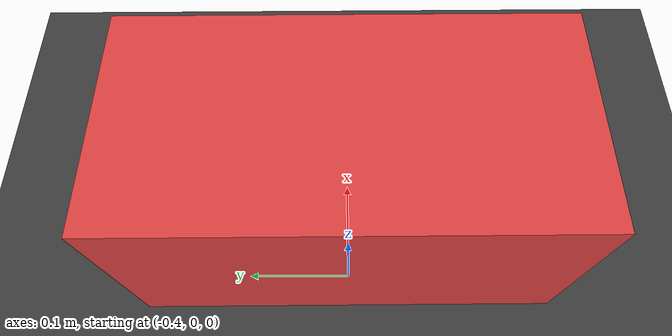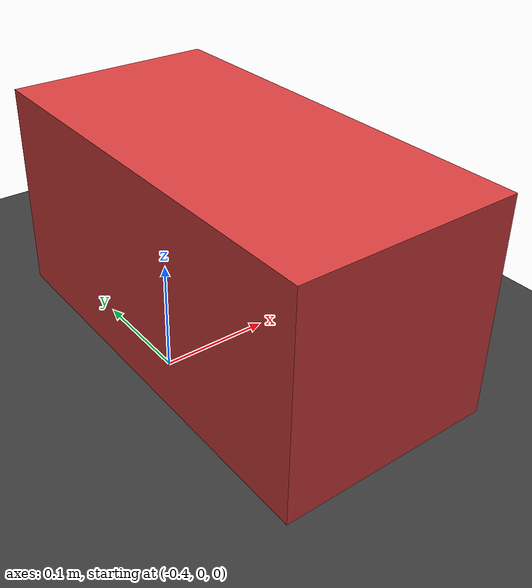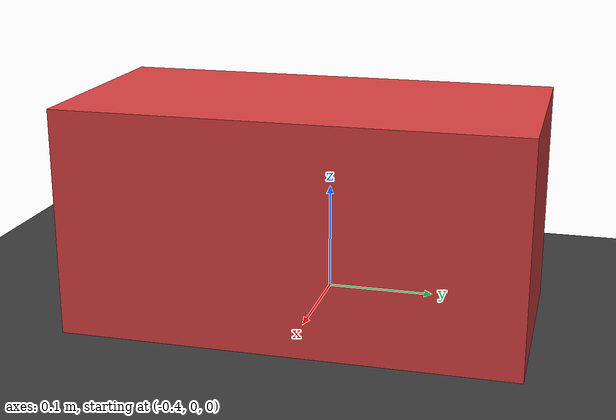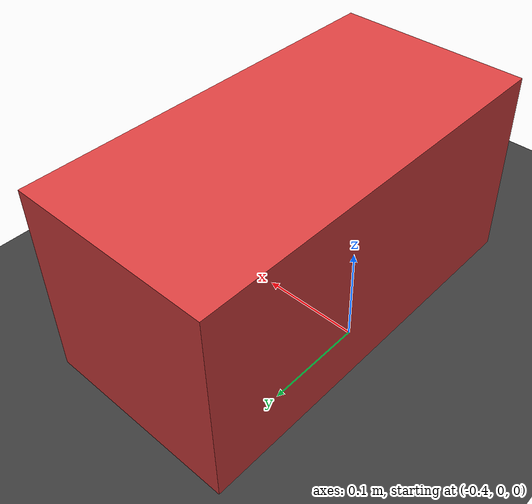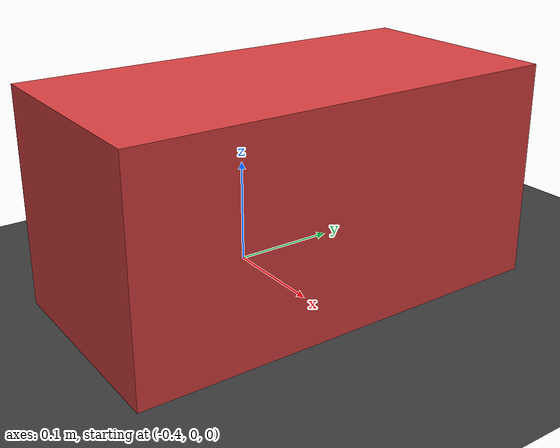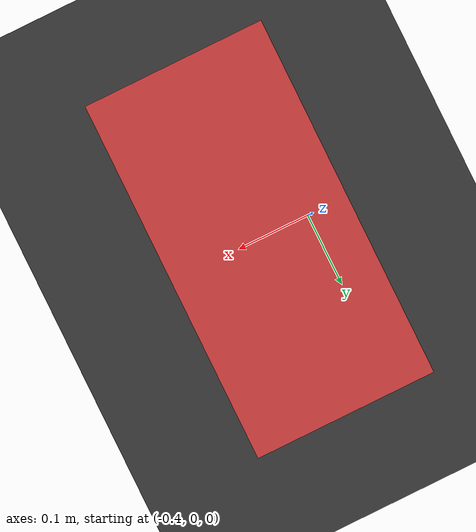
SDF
<?xml version="1.0" ?>
<sdf version="1.6">
  <world name="vacio">
    <plugin
      filename="ignition-gazebo-physics-system"
      name="ignition::gazebo::systems::Physics">
    </plugin>
    <plugin
      filename="ignition-gazebo-user-commands-system"
      name="ignition::gazebo::systems::UserCommands">
    </plugin>
    <plugin
      filename="ignition-gazebo-scene-broadcaster-system"
      name="ignition::gazebo::systems::SceneBroadcaster">
    </plugin>
    <plugin
      filename="ignition-gazebo-sensors-system"
      name="ignition::gazebo::systems::Sensors">
      <render_engine>ogre2</render_engine>
    </plugin>
    <plugin
      filename="ignition-gazebo-imu-system"
      name="ignition::gazebo::systems::Imu">
    </plugin>
    <plugin
      filename="ignition-gazebo-navsat-system"
      name="ignition::gazebo::systems::NavSat">
    </plugin>

    <spherical_coordinates>
      <surface_model>EARTH_WGS84</surface_model>
      <latitude_deg>-31.486241</latitude_deg>
      <longitude_deg>-64.240628</longitude_deg>
      <elevation>0.0</elevation>
    </spherical_coordinates>

    <light name="sun" type="directional">
      <cast_shadows>0</cast_shadows>
      <pose>0 0 10 0 0 0</pose>
      <diffuse>0.8 0.8 0.8 1</diffuse>
      <specular>0.8 0.8 0.8 1</specular>
      <attenuation>
        <range>1000</range>
        <constant>0.9</constant>
        <linear>0.01</linear>
        <quadratic>0.001</quadratic>
      </attenuation>
      <direction>-0.5 0.1 -0.9</direction>
    </light>

    <model name="ground_plane">
      <static>1</static>
      <link name="link">
        <collision name="collision">
          <pose>0 0 -0.05 0 0 0</pose>
          <geometry>
            <box>
              <size>2000 2000 0.1</size>
            </box>
          </geometry>
          <max_contacts>10</max_contacts>
          <surface>
            <friction>
              <ode>
                <mu>2.5</mu>
                <mu2>2.5</mu2>
                <slip1>0.0</slip1>
                <slip2>0.0</slip2>
              </ode>
            </friction>
          </surface>
        </collision>
        <visual name="visual">
          <geometry>
            <plane>
              <normal>0 0 1</normal>
              <size>2000 2000</size>
            </plane>
          </geometry>
          <material>
            <ambient>0.20 0.20 0.20 1</ambient>
            <diffuse>0.23 0.23 0.23 1</diffuse>
            <specular>0.18 0.18 0.18 1</specular>
          </material>
        </visual>
      </link>
    </model>

    <model name="rear_box_10cm">
      <static>1</static>
      <pose>-0.33 0 0.10 0 0 0</pose>
      <link name="link">
        <collision name="collision">
          <geometry>
            <box>
              <size>0.20 0.40 0.20</size>
            </box>
          </geometry>
        </collision>
        <visual name="visual">
          <geometry>
            <box>
              <size>0.20 0.40 0.20</size>
            </box>
          </geometry>
          <material>
            <ambient>0.85 0.25 0.25 1</ambient>
            <diffuse>0.85 0.25 0.25 1</diffuse>
            <specular>0.1 0.1 0.1 1</specular>
          </material>
        </visual>
      </link>
    </model>

    <physics name="3ms" type="dart">
      <max_step_size>0.003</max_step_size>
      <real_time_factor>1</real_time_factor>
    </physics>
  </world>
</sdf>
